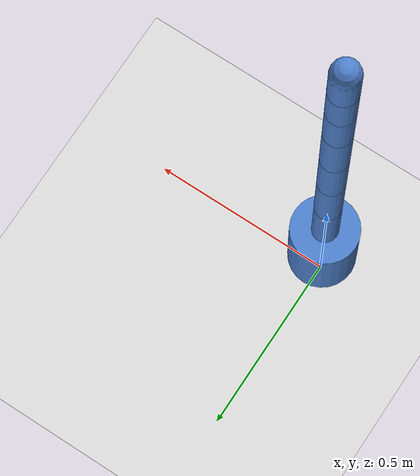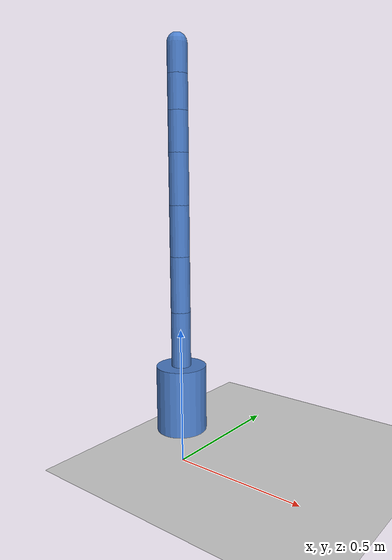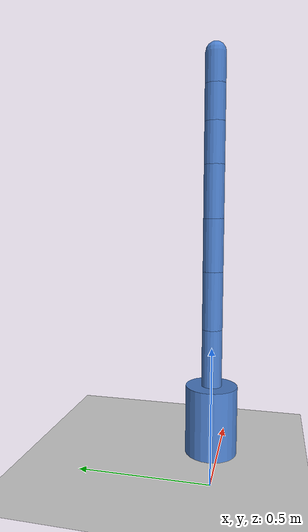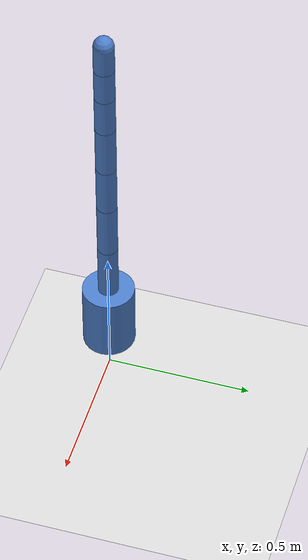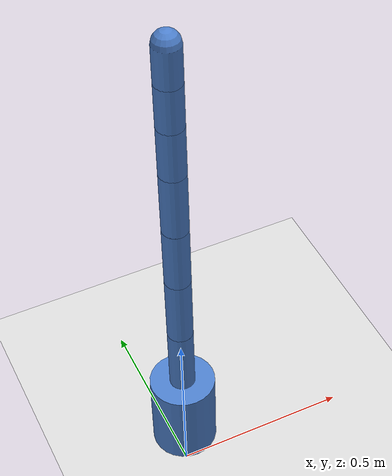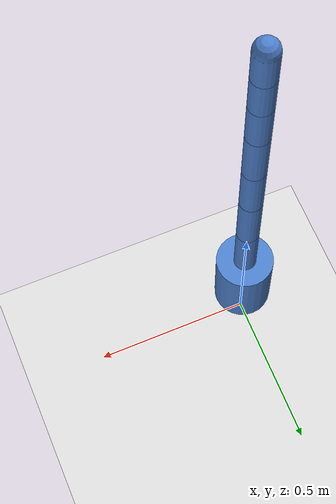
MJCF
<mujoco model="tianji_7dof_surrogate">
  <!-- Interface test fixture only. This is not Tianji geometry or dynamics. -->
  <compiler angle="radian" autolimits="true"/>
  <option timestep="0.002" gravity="0 0 0"/>
  <default>
    <joint damping="2" armature="0.05"/>
    <geom type="capsule" size="0.035" density="1000" rgba="0.3 0.5 0.8 1"/>
  </default>
  <worldbody>
    <light pos="0 0 2"/>
    <geom name="floor" type="plane" size="2 2 0.1" rgba="0.85 0.85 0.85 1"/>
    <body name="base" pos="0 0 0.25">
      <geom name="base_geom" type="cylinder" size="0.09 0.12" mass="3"/>
      <body name="link1" pos="0 0 0.12">
        <joint name="joint1" type="hinge" axis="0 0 1" range="-2.5 2.5"/>
        <geom fromto="0 0 0 0 0 0.20"/>
        <body name="link2" pos="0 0 0.20">
          <joint name="joint2" type="hinge" axis="0 1 0" range="-1.8 1.8"/>
          <geom fromto="0 0 0 0 0 0.20"/>
          <body name="link3" pos="0 0 0.20">
            <joint name="joint3" type="hinge" axis="1 0 0" range="-2.5 2.5"/>
            <geom fromto="0 0 0 0 0 0.18"/>
            <body name="link4" pos="0 0 0.18">
              <joint name="joint4" type="hinge" axis="0 1 0" range="-2.2 2.2"/>
              <geom fromto="0 0 0 0 0 0.18"/>
              <body name="link5" pos="0 0 0.18">
                <joint name="joint5" type="hinge" axis="1 0 0" range="-2.5 2.5"/>
                <geom fromto="0 0 0 0 0 0.14"/>
                <body name="link6" pos="0 0 0.14">
                  <joint name="joint6" type="hinge" axis="0 1 0" range="-2.0 2.0"/>
                  <geom fromto="0 0 0 0 0 0.12"/>
                  <body name="link7" pos="0 0 0.12">
                    <joint name="joint7" type="hinge" axis="0 0 1" range="-2.5 2.5"/>
                    <geom fromto="0 0 0 0 0 0.10"/>
                    <site name="tcp" pos="0 0 0.10" size="0.02" rgba="1 0.2 0.2 1"/>
                  </body>
                </body>
              </body>
            </body>
          </body>
        </body>
      </body>
    </body>
  </worldbody>
  <actuator>
    <position name="servo1" joint="joint1" kp="80" kv="8" ctrlrange="-2.5 2.5"/>
    <position name="servo2" joint="joint2" kp="80" kv="8" ctrlrange="-1.8 1.8"/>
    <position name="servo3" joint="joint3" kp="80" kv="8" ctrlrange="-2.5 2.5"/>
    <position name="servo4" joint="joint4" kp="80" kv="8" ctrlrange="-2.2 2.2"/>
    <position name="servo5" joint="joint5" kp="80" kv="8" ctrlrange="-2.5 2.5"/>
    <position name="servo6" joint="joint6" kp="80" kv="8" ctrlrange="-2.0 2.0"/>
    <position name="servo7" joint="joint7" kp="80" kv="8" ctrlrange="-2.5 2.5"/>
  </actuator>
</mujoco>
